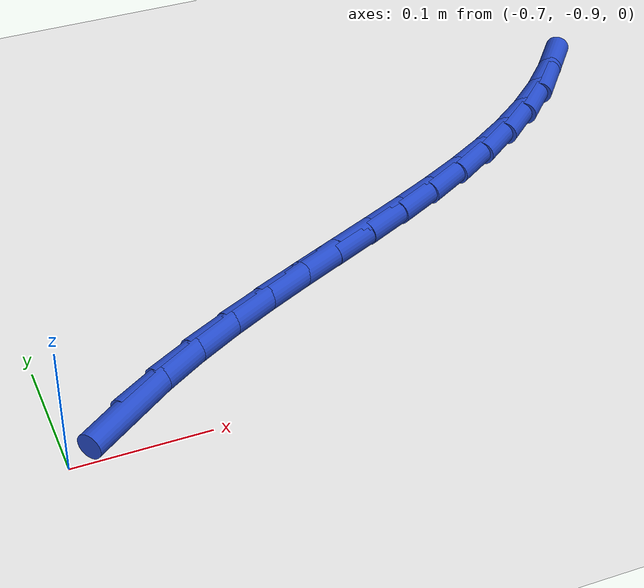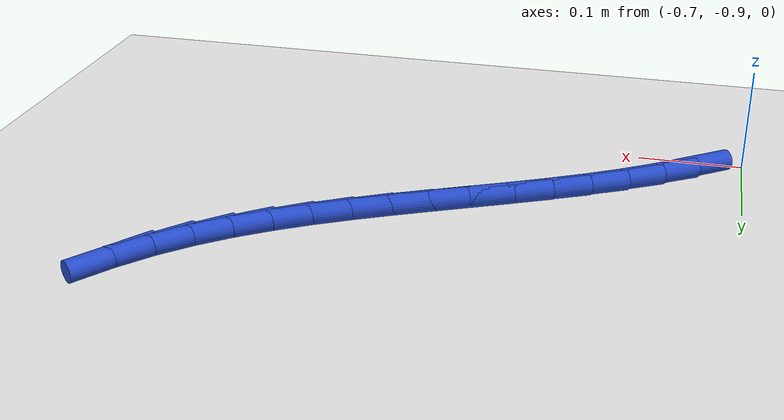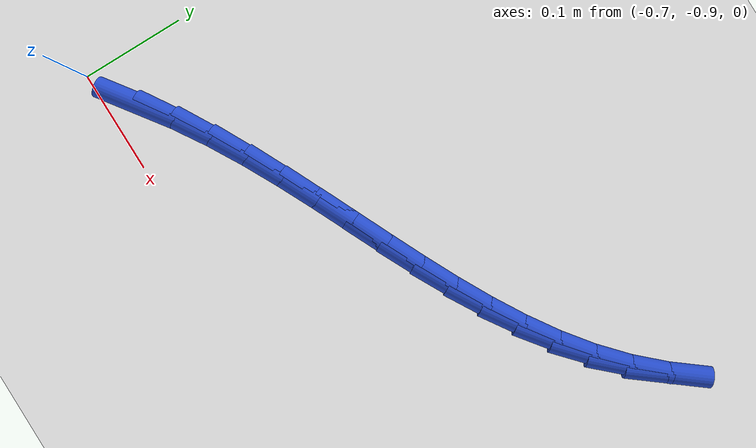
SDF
<sdf version="1.6">
 <world name="default">
  <model name="ground_plane">
   <static>1</static>
   <link name="link">
    <collision name="collision">
     <geometry><plane><normal>0 0 1</normal><size>100 100</size></plane></geometry>
     <surface><friction><ode><mu>100</mu><mu2>50</mu2></ode></friction></surface>
    </collision>
    <visual name="visual">
     <cast_shadows>0</cast_shadows>
     <geometry><plane><normal>0 0 1</normal><size>100 100</size></plane></geometry>
     <material>
      <script><uri>file://media/materials/scripts/gazebo.material</uri><name>Gazebo/WhiteGlow</name></script>
     </material>
    </visual>
   </link>
  </model>
  <model name="line">
   <link name="link_158">
    <pose>-0.6517502986105408 -0.8713388846514527 0.01 0 1.57 0.6265937485256481</pose>
    <collision name="collision">
     <geometry><cylinder><radius>0.01</radius><length>0.08</length></cylinder></geometry>
    </collision>
    <visual name="visual">
     <material>
      <script><name>Gazebo/Blue</name><uri>file://media/materials/scripts/gazebo.material</uri></script>
     </material>
     <geometry><cylinder><radius>0.01</radius><length>0.08</length></cylinder></geometry>
    </visual>
   </link>
   <link name="link_159">
    <pose>-0.6213181259262152 -0.8493087125426475 0.01 0 1.57 0.567127105968349</pose>
    <collision name="collision">
     <geometry><cylinder><radius>0.01</radius><length>0.08</length></cylinder></geometry>
    </collision>
    <visual name="visual">
     <material>
      <script><name>Gazebo/Blue</name><uri>file://media/materials/scripts/gazebo.material</uri></script>
     </material>
     <geometry><cylinder><radius>0.01</radius><length>0.08</length></cylinder></geometry>
    </visual>
   </link>
   <link name="link_160">
    <pose>-0.5897075603778134 -0.8291752227884658 0.01 0 1.57 0.5185342872598273</pose>
    <collision name="collision">
     <geometry><cylinder><radius>0.01</radius><length>0.08</length></cylinder></geometry>
    </collision>
    <visual name="visual">
     <material>
      <script><name>Gazebo/Blue</name><uri>file://media/materials/scripts/gazebo.material</uri></script>
     </material>
     <geometry><cylinder><radius>0.01</radius><length>0.08</length></cylinder></geometry>
    </visual>
   </link>
   <link name="link_161">
    <pose>-0.5571678973448045 -0.8106075298258137 0.01 0 1.57 0.481079344549431</pose>
    <collision name="collision">
     <geometry><cylinder><radius>0.01</radius><length>0.08</length></cylinder></geometry>
    </collision>
    <visual name="visual">
     <material>
      <script><name>Gazebo/Blue</name><uri>file://media/materials/scripts/gazebo.material</uri></script>
     </material>
     <geometry><cylinder><radius>0.01</radius><length>0.08</length></cylinder></geometry>
    </visual>
   </link>
   <link name="link_162">
    <pose>-0.5239515660815781 -0.7932691529277811 0.01 0 1.57 0.4546962558351127</pose>
    <collision name="collision">
     <geometry><cylinder><radius>0.01</radius><length>0.08</length></cylinder></geometry>
    </collision>
    <visual name="visual">
     <material>
      <script><name>Gazebo/Blue</name><uri>file://media/materials/scripts/gazebo.material</uri></script>
     </material>
     <geometry><cylinder><radius>0.01</radius><length>0.08</length></cylinder></geometry>
    </visual>
   </link>
   <link name="link_163">
    <pose>-0.4903109958425227 -0.7768236113674569 0.01 0 1.57 0.4392971369716794</pose>
    <collision name="collision">
     <geometry><cylinder><radius>0.01</radius><length>0.08</length></cylinder></geometry>
    </collision>
    <visual name="visual">
     <material>
      <script><name>Gazebo/Blue</name><uri>file://media/materials/scripts/gazebo.material</uri></script>
     </material>
     <geometry><cylinder><radius>0.01</radius><length>0.08</length></cylinder></geometry>
    </visual>
   </link>
   <link name="link_164">
    <pose>-0.45649861588202784 -0.7609344244179315 0.01 0 1.57 0.4348686842222709</pose>
    <collision name="collision">
     <geometry><cylinder><radius>0.01</radius><length>0.08</length></cylinder></geometry>
    </collision>
    <visual name="visual">
     <material>
      <script><name>Gazebo/Blue</name><uri>file://media/materials/scripts/gazebo.material</uri></script>
     </material>
     <geometry><cylinder><radius>0.01</radius><length>0.08</length></cylinder></geometry>
    </visual>
   </link>
   <link name="link_165">
    <pose>-0.4227668554544819 -0.7452651113522937 0.01 0 1.57 0.4415296631949312</pose>
    <collision name="collision">
     <geometry><cylinder><radius>0.01</radius><length>0.08</length></cylinder></geometry>
    </collision>
    <visual name="visual">
     <material>
      <script><name>Gazebo/Blue</name><uri>file://media/materials/scripts/gazebo.material</uri></script>
     </material>
     <geometry><cylinder><radius>0.01</radius><length>0.08</length></cylinder></geometry>
    </visual>
   </link>
   <link name="link_166">
    <pose>-0.3893681438142748 -0.7294791914436333 0.01 0 1.57 0.4595528820221079</pose>
    <collision name="collision">
     <geometry><cylinder><radius>0.01</radius><length>0.08</length></cylinder></geometry>
    </collision>
    <visual name="visual">
     <material>
      <script><name>Gazebo/Blue</name><uri>file://media/materials/scripts/gazebo.material</uri></script>
     </material>
     <geometry><cylinder><radius>0.01</radius><length>0.08</length></cylinder></geometry>
    </visual>
   </link>
   <link name="link_167">
    <pose>-0.3565549102157941 -0.7132401839650396 0.01 0 1.57 0.4893500865372385</pose>
    <collision name="collision">
     <geometry><cylinder><radius>0.01</radius><length>0.08</length></cylinder></geometry>
    </collision>
    <visual name="visual">
     <material>
      <script><name>Gazebo/Blue</name><uri>file://media/materials/scripts/gazebo.material</uri></script>
     </material>
     <geometry><cylinder><radius>0.01</radius><length>0.08</length></cylinder></geometry>
    </visual>
   </link>
   <link name="link_168">
    <pose>-0.3245795839134295 -0.696211608189602 0.01 0 1.57 0.5314109074506547</pose>
    <collision name="collision">
     <geometry><cylinder><radius>0.01</radius><length>0.08</length></cylinder></geometry>
    </collision>
    <visual name="visual">
     <material>
      <script><name>Gazebo/Blue</name><uri>file://media/materials/scripts/gazebo.material</uri></script>
     </material>
     <geometry><cylinder><radius>0.01</radius><length>0.08</length></cylinder></geometry>
    </visual>
   </link>
   <link name="link_169">
    <pose>-0.29369459416157 -0.6780569833904104 0.01 0 1.57 0.5861804371228372</pose>
    <collision name="collision">
     <geometry><cylinder><radius>0.01</radius><length>0.08</length></cylinder></geometry>
    </collision>
    <visual name="visual">
     <material>
      <script><name>Gazebo/Blue</name><uri>file://media/materials/scripts/gazebo.material</uri></script>
     </material>
     <geometry><cylinder><radius>0.01</radius><length>0.08</length></cylinder></geometry>
    </visual>
   </link>
   <link name="link_170">
    <pose>-0.2641523702146045 -0.658439828840554 0.01 0 1.57 0.6538597961995555</pose>
    <collision name="collision">
     <geometry><cylinder><radius>0.01</radius><length>0.08</length></cylinder></geometry>
    </collision>
    <visual name="visual">
     <material>
      <script><name>Gazebo/Blue</name><uri>file://media/materials/scripts/gazebo.material</uri></script>
     </material>
     <geometry><cylinder><radius>0.01</radius><length>0.08</length></cylinder></geometry>
    </visual>
   </link>
   <link name="link_171">
    <pose>-0.23620534132692203 -0.6370236638131224 0.01 0 1.57 0.7341299694140738</pose>
    <collision name="collision">
     <geometry><cylinder><radius>0.01</radius><length>0.08</length></cylinder></geometry>
    </collision>
    <visual name="visual">
     <material>
      <script><name>Gazebo/Blue</name><uri>file://media/materials/scripts/gazebo.material</uri></script>
     </material>
     <geometry><cylinder><radius>0.01</radius><length>0.08</length></cylinder></geometry>
    </visual>
   </link>
   <link name="link_172">
    <pose>-0.21010593506734562 -0.6134720103031774 0.01 0 1.57 0.8223116212369193</pose>
    <collision name="collision">
     <geometry><cylinder><radius>0.01</radius><length>0.08</length></cylinder></geometry>
    </collision>
    <visual name="visual">
     <material>
      <script><name>Gazebo/Blue</name><uri>file://media/materials/scripts/gazebo.material</uri></script>
     </material>
     <geometry><cylinder><radius>0.01</radius><length>0.08</length></cylinder></geometry>
    </visual>
   </link>
   <link name="link_173">
    <pose>-0.18603833339075818 -0.5875585981338481 0.01 0 1.57 0.9043051358728875</pose>
    <collision name="collision">
     <geometry><cylinder><radius>0.01</radius><length>0.08</length></cylinder></geometry>
    </collision>
    <visual name="visual">
     <material>
      <script><name>Gazebo/Blue</name><uri>file://media/materials/scripts/gazebo.material</uri></script>
     </material>
     <geometry><cylinder><radius>0.01</radius><length>0.08</length></cylinder></geometry>
    </visual>
   </link>
  </model>
 </world>
</sdf>
